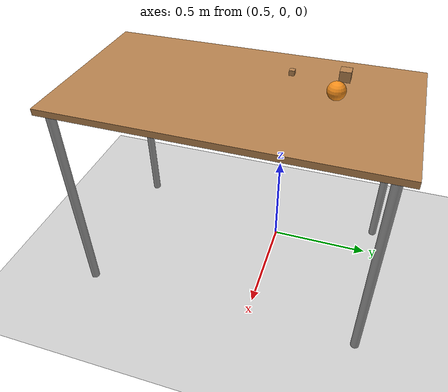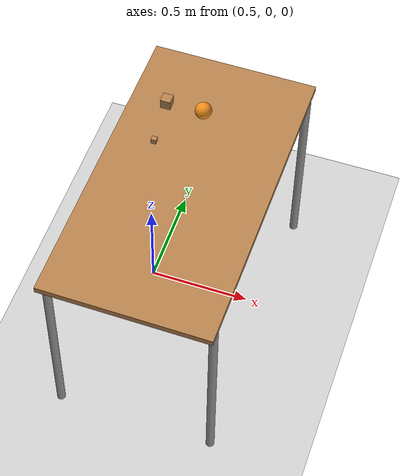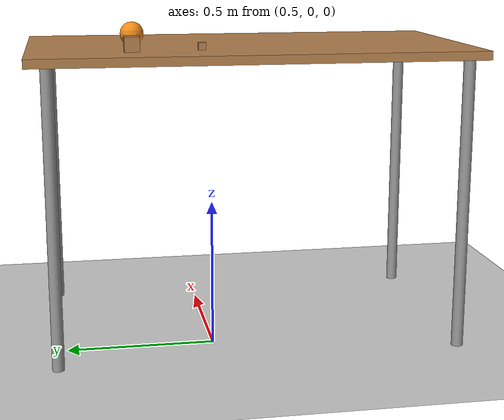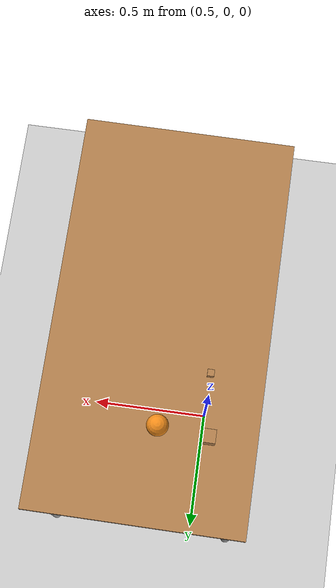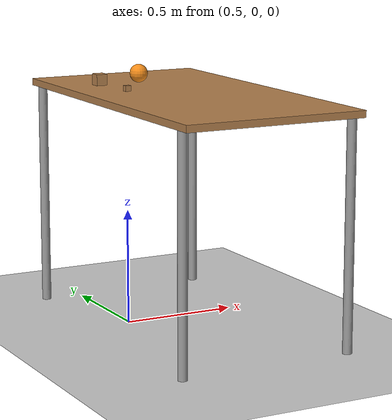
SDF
<sdf version="1.6">
 <world name="default">
  <light name="sun" type="directional">
   <pose>0 0 10 0 -0 0</pose>
   <diffuse>0.8 0.8 0.8 1</diffuse>
   <specular>0.2 0.2 0.2 1</specular>
   <attenuation>
    <range>1000</range>
    <constant>0.9</constant>
    <linear>0.01</linear>
    <quadratic>0.001</quadratic>
   </attenuation>
   <direction>-0.5 0.1 -0.9</direction>
  </light>
  <model name="ground_plane">
   <static>1</static>
   <link name="link">
    <collision name="collision">
     <geometry><plane><normal>0 0 1</normal><size>100 100</size></plane></geometry>
     <surface>
      <contact><collide_bitmask>65535</collide_bitmask></contact>
      <friction><ode><mu>100</mu><mu2>50</mu2></ode></friction>
     </surface>
    </collision>
    <visual name="visual">
     <cast_shadows>0</cast_shadows>
     <geometry><plane><normal>0 0 1</normal><size>100 100</size></plane></geometry>
     <material>
      <script><uri>file://media/materials/scripts/gazebo.material</uri><name>Gazebo/Grey</name></script>
     </material>
    </visual>
   </link>
  </model>
  <gravity>0 0 -9.8</gravity>
  <magnetic_field>6e-06 2.3e-05 -4.2e-05</magnetic_field>
  <atmosphere type="adiabatic"/>
  <physics name="default_physics" default="0" type="ode">
   <max_step_size>0.001</max_step_size>
   <real_time_factor>1</real_time_factor>
   <real_time_update_rate>1000</real_time_update_rate>
  </physics>
  <scene><ambient>0.4 0.4 0.4 1</ambient><background>0.7 0.7 0.7 1</background><shadows>1</shadows></scene>
  <audio><device>default</device></audio>
  <spherical_coordinates>
   <surface_model>EARTH_WGS84</surface_model>
   <latitude_deg>0</latitude_deg>
   <longitude_deg>0</longitude_deg>
   <elevation>0</elevation>
   <heading_deg>0</heading_deg>
  </spherical_coordinates>
  <model name="table">
   <static>1</static>
   <link name="link">
    <collision name="surface">
     <pose>0 0 1 0 -0 0</pose>
     <geometry><box><size>1.5 0.8 0.03</size></box></geometry>
     <surface><friction><ode><mu>0.6</mu><mu2>0.6</mu2></ode></friction></surface>
    </collision>
    <visual name="visual1">
     <pose>0 0 1 0 -0 0</pose>
     <geometry><box><size>1.5 0.8 0.03</size></box></geometry>
     <material>
      <script><uri>file://media/materials/scripts/gazebo.material</uri><name>Gazebo/Wood</name></script>
     </material>
    </visual>
    <collision name="front_left_leg">
     <pose>0.68 0.38 0.5 0 -0 0</pose>
     <geometry><cylinder><radius>0.02</radius><length>1</length></cylinder></geometry>
    </collision>
    <visual name="front_left_leg">
     <pose>0.68 0.38 0.5 0 -0 0</pose>
     <geometry><cylinder><radius>0.02</radius><length>1</length></cylinder></geometry>
     <material>
      <script><uri>file://media/materials/scripts/gazebo.material</uri><name>Gazebo/Grey</name></script>
     </material>
    </visual>
    <collision name="front_right_leg">
     <pose>0.68 -0.38 0.5 0 -0 0</pose>
     <geometry><cylinder><radius>0.02</radius><length>1</length></cylinder></geometry>
    </collision>
    <visual name="front_right_leg">
     <pose>0.68 -0.38 0.5 0 -0 0</pose>
     <geometry><cylinder><radius>0.02</radius><length>1</length></cylinder></geometry>
     <material>
      <script><uri>file://media/materials/scripts/gazebo.material</uri><name>Gazebo/Grey</name></script>
     </material>
    </visual>
    <collision name="back_right_leg">
     <pose>-0.68 -0.38 0.5 0 -0 0</pose>
     <geometry><cylinder><radius>0.02</radius><length>1</length></cylinder></geometry>
    </collision>
    <visual name="back_right_leg">
     <pose>-0.68 -0.38 0.5 0 -0 0</pose>
     <geometry><cylinder><radius>0.02</radius><length>1</length></cylinder></geometry>
     <material>
      <script><uri>file://media/materials/scripts/gazebo.material</uri><name>Gazebo/Grey</name></script>
     </material>
    </visual>
    <collision name="back_left_leg">
     <pose>-0.68 0.38 0.5 0 -0 0</pose>
     <geometry><cylinder><radius>0.02</radius><length>1</length></cylinder></geometry>
    </collision>
    <visual name="back_left_leg">
     <pose>-0.68 0.38 0.5 0 -0 0</pose>
     <geometry><cylinder><radius>0.02</radius><length>1</length></cylinder></geometry>
     <material>
      <script><uri>file://media/materials/scripts/gazebo.material</uri><name>Gazebo/Grey</name></script>
     </material>
    </visual>
   </link>
   <pose>0.712956 -0.151487 0 0 0 -1.57673</pose>
  </model>
  <model name="wood_cube_5cm">
   <link name="link">
    <pose>0 0 0.025 0 -0 0</pose>
    <inertial>
     <mass>0.0565</mass>
     <inertia>
      <ixx>2.35417e-05</ixx>
      <ixy>0</ixy>
      <ixz>0</ixz>
      <iyy>2.35417e-05</iyy>
      <iyz>0</iyz>
      <izz>2.35417e-05</izz>
     </inertia>
    </inertial>
    <collision name="collision">
     <geometry><box><size>0.05 0.05 0.05</size></box></geometry>
     <surface>
      <contact>
       <poissons_ratio>0.347</poissons_ratio>
       <elastic_modulus>8.8e+09</elastic_modulus>
       <ode><kp>100000</kp><kd>1</kd><max_vel>1</max_vel><min_depth>0.001</min_depth></ode>
      </contact>
      <friction>
       <torsional>
        <coefficient>1</coefficient>
        <use_patch_radius>0</use_patch_radius>
        <surface_radius>0.05</surface_radius>
       </torsional>
      </friction>
     </surface>
    </collision>
    <visual name="visual">
     <geometry><box><size>0.05 0.05 0.05</size></box></geometry>
     <material>
      <script><uri>file://media/materials/scripts/gazebo.material</uri><name>Gazebo/Wood</name></script>
     </material>
    </visual>
   </link>
   <pose>0.492319 0.258134 1.014 0 -0 0</pose>
  </model>
  <model name="wood_cube_2_5cm">
   <link name="link">
    <pose>0 0 0.0125 0 -0 0</pose>
    <inertial>
     <mass>0.0073</mass>
     <inertia>
      <ixx>7.60417e-07</ixx>
      <ixy>0</ixy>
      <ixz>0</ixz>
      <iyy>7.60417e-07</iyy>
      <iyz>0</iyz>
      <izz>7.60417e-07</izz>
     </inertia>
    </inertial>
    <collision name="collision">
     <geometry><box><size>0.025 0.025 0.025</size></box></geometry>
     <surface>
      <contact>
       <poissons_ratio>0.347</poissons_ratio>
       <elastic_modulus>8.8e+09</elastic_modulus>
       <ode><kp>100000</kp><kd>100</kd><max_vel>100</max_vel><min_depth>0.001</min_depth></ode>
      </contact>
      <friction>
       <torsional>
        <coefficient>1</coefficient>
        <use_patch_radius>0</use_patch_radius>
        <surface_radius>0.01</surface_radius>
       </torsional>
      </friction>
     </surface>
    </collision>
    <visual name="visual">
     <geometry><box><size>0.025 0.025 0.025</size></box></geometry>
     <material>
      <script><uri>file://media/materials/scripts/gazebo.material</uri><name>Gazebo/Wood</name></script>
     </material>
    </visual>
   </link>
   <pose>0.513319 0.02708 1.01445 -0.002642 -1e-06 0</pose>
  </model>
  <model name="sphere_o_40mm">
   <link name="link_2">
    <inertial>
     <mass>0.2</mass>
     <inertia>
      <ixx>0.000128</ixx>
      <ixy>0</ixy>
      <ixz>0</ixz>
      <iyy>0.000128</iyy>
      <iyz>0</iyz>
      <izz>0.000128</izz>
     </inertia>
    </inertial>
    <pose>0 0 -1e-06 0 -0 0</pose>
    <visual name="visual">
     <geometry><sphere><radius>0.04</radius></sphere></geometry>
     <material>
      <lighting>1</lighting>
      <script><uri>file://media/materials/scripts/gazebo.material</uri><name>Gazebo/Orange</name></script>
      <shader type="vertex"><normal_map>__default__</normal_map></shader>
      <ambient>1 0.509 0.047 1</ambient>
      <diffuse>1 0.509 0.047 1</diffuse>
      <specular>0.5 0.5 0.5 1</specular>
      <emissive>0 0 0 1</emissive>
     </material>
    </visual>
    <collision name="collision">
     <geometry><sphere><radius>0.04</radius></sphere></geometry>
     <surface>
      <friction>
       <ode><mu>1</mu><mu2>1</mu2><fdir1>0 0 0</fdir1><slip1>0</slip1><slip2>0</slip2></ode>
       <torsional>
        <coefficient>1</coefficient>
        <patch_radius>0</patch_radius>
        <surface_radius>0</surface_radius>
        <use_patch_radius>1</use_patch_radius>
        <ode><slip>0</slip></ode>
       </torsional>
      </friction>
      <bounce><restitution_coefficient>0</restitution_coefficient><threshold>1e+06</threshold></bounce>
      <contact>
       <collide_without_contact>0</collide_without_contact>
       <collide_without_contact_bitmask>1</collide_without_contact_bitmask>
       <collide_bitmask>1</collide_bitmask>
       <ode>
        <soft_cfm>0</soft_cfm>
        <soft_erp>0.2</soft_erp>
        <kp>1e+13</kp>
        <kd>1</kd>
        <max_vel>0.01</max_vel>
        <min_depth>0</min_depth>
       </ode>
       <bullet>
        <split_impulse>1</split_impulse>
        <split_impulse_penetration_threshold>-0.01</split_impulse_penetration_threshold>
        <soft_cfm>0</soft_cfm>
        <soft_erp>0.2</soft_erp>
        <kp>1e+13</kp>
        <kd>1</kd>
       </bullet>
      </contact>
     </surface>
    </collision>
   </link>
   <static>0</static>
   <pose>0.676354 0.244851 1.05734 0 -0 0</pose>
  </model>
 </world>
</sdf>
